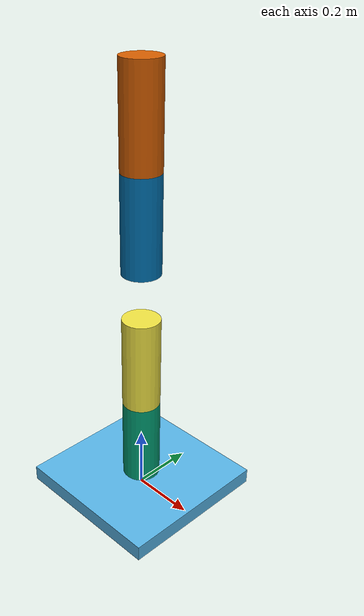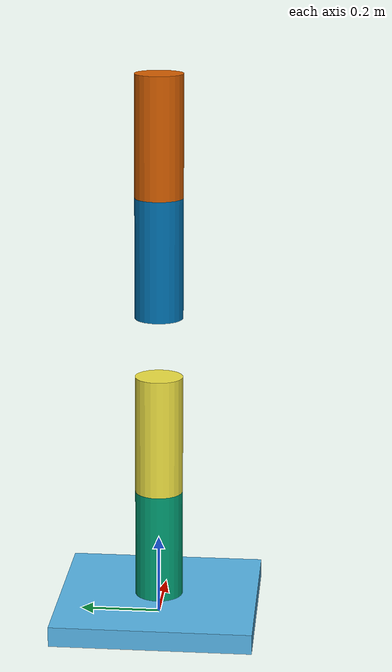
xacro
<?xml version="1.0" ?>
<robot name="Cerebroarm" xmlns:xacro="http://www.ros.org/wiki/xacro">
<xacro:property name="pi" value="3.1415926535897931"/>
<xacro:property name="r1" value="0.06"/>
<xacro:property name="l1" value="0.30"/>
<xacro:property name="l2" value="0.40"/>
<xacro:property name="m" value="1"/>
<xacro:property name="a" value="0.50"/>

<link name="world"/>

<joint name="fixed" type="fixed">
    <parent link="world"/>
    <child  link="base_plate"/>
</joint>

<link name="base_plate">
    <inertial>
        <mass value="${m}"/>
        <origin xyz="0.0 0.0 0.025" rpy="0.0 0.0 0.0"/>
        <inertia ixx="0.020833" iyy="0.020833" izz="0.041667" iyz="0.0" ixz="0.0" ixy="0.0"/>
    </inertial>

    <visual>
        <origin xyz="0 0 0.025" rpy="0.0 0.0 0.0"/>
          <geometry>
              <box size="${a} ${a} 0.05"/>
          </geometry>
    </visual>
</link>

<joint name="plate_basecyl" type="continuous">
    <origin xyz="0.0 0.0 0.025" rpy="0.0 0.0 0.0"/>
    <parent link="base_plate"/>
    <child link="base_cylinder"/>
    <axis xyz="0.0 1.0 0.0"/>
</joint>

<link name="base_cylinder">
    <inertial>
        <mass value="${m}"/>
        <origin xyz="0 0 ${0.05+l1/2}" rpy="0.0 0.0 0.0"/>
        <inertia ixx="${m/3.0*l1*l1}" iyy="${m/3.0*l1*l1}" izz="${m/2*r1*r1}" iyz="0.0" ixz="0.0" ixy="0.0" />
    </inertial>

    <visual>
        <origin xyz="0 0 ${l1/2}" rpy="0.0 0.0 0.0"/>
          <geometry>
              <cylinder radius="${r1}" length="${l1}"/>
          </geometry>
    </visual>
</link>

<link name="base_cylinder1">
    <inertial>
        <mass value="${m}"/>
        <origin xyz="0 0 ${0.05+1.5*l1}" rpy="0.0 0.0 0.0"/>
        <inertia ixx="${m/3.0*l1*l1}" iyy="${m/3.0*l1*l1}" izz="${m/2*r1*r1}" iyz="0.0" ixz="0.0" ixy="0.0" />
    </inertial>

    <visual>
        <origin xyz="0 0 ${l1/2}" rpy="0.0 0.0 0.0"/>
          <geometry>
              <cylinder radius="${r1}" length="${l1}"/>
          </geometry>
    </visual>
</link>

<joint name="basecyl_zaxis" type="continuous">
    <origin xyz="0.0 0.0 ${l1}" rpy="0.0 0.0 0.0"/>
    <parent link="base_cylinder"/>
    <child link="base_cylinder1"/>
    <axis xyz="0.0 0.0 1.0"/>
</joint>

<link name="base_cylinder2">
    <inertial>
        <mass value="${m}"/>
        <origin xyz="0 0 ${0.05+2*l1+0.5*l2}" rpy="0.0 0.0 0.0"/>
        <inertia ixx="${m/3.0*l1*l1}" iyy="${m/3.0*l1*l1}" izz="${m/2*r1*r1}" iyz="0.0" ixz="0.0" ixy="0.0" />
    </inertial>

    <visual>
        <origin xyz="0 0 ${l2/2+l1/2-0.05}" rpy="0.0 0.0 0.0"/>
          <geometry>
              <cylinder radius="${r1}" length="${l1}"/>
          </geometry>
    </visual>
</link>

<joint name="basecyl_zaxis1" type="continuous">
    <origin xyz="0.0 0.0 ${l1}" rpy="0.0 0.0 0.0"/>
    <parent link="base_cylinder1"/>
    <child link="base_cylinder2"/>
    <axis xyz="1.0 0.0 0.0"/>
</joint>

<link name="gripper">
    <inertial>
        <mass value="${m}"/>
        <origin xyz="0 0 ${0.05+2*l1+0.5*l2}" rpy="${pi/2} 0.0 0.0"/>
        <inertia ixx="${m/3.0*l1*l1}" iyy="${m/3.0*l1*l1}" izz="${m/2*r1*r1}" iyz="0.0" ixz="0.0" ixy="0.0" />
    </inertial>

    <visual>
        <origin xyz="0 0 ${l2/2+l1/2-0.05}" rpy="0.0 0.0 0.0"/>
          <geometry>
              <cylinder radius="${r1}" length="${l1}"/>
          </geometry>
    </visual>
</link>

<joint name="basecyl_zaxis2" type="continuous">
    <origin xyz="0.0 0.0 ${l1}" rpy="0.0 0.0 0.0"/>
    <parent link="base_cylinder2"/>
    <child link="gripper"/>
    <axis xyz="1.0 0.0 0.0"/>
</joint>
</robot>
